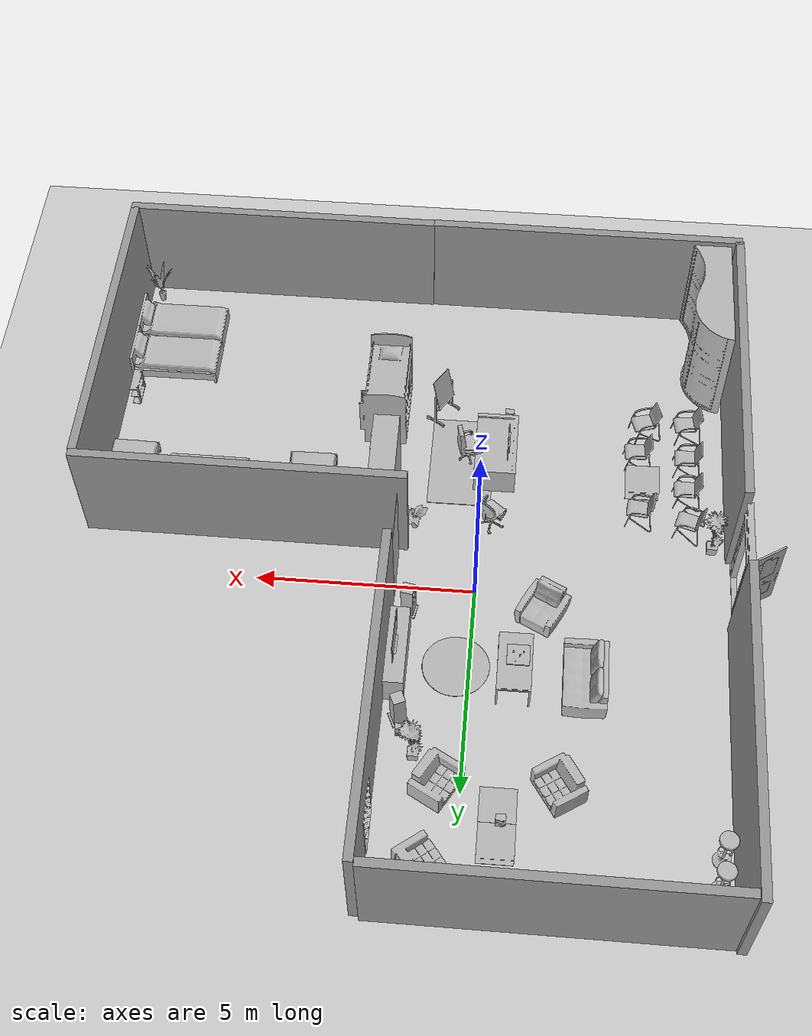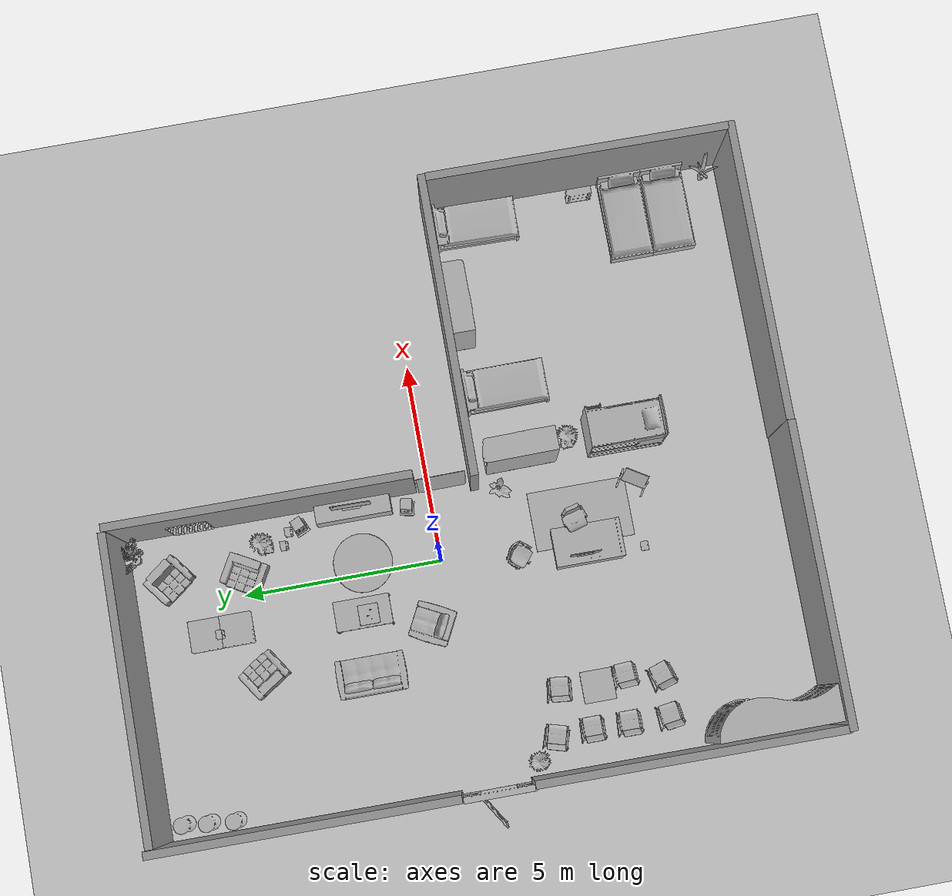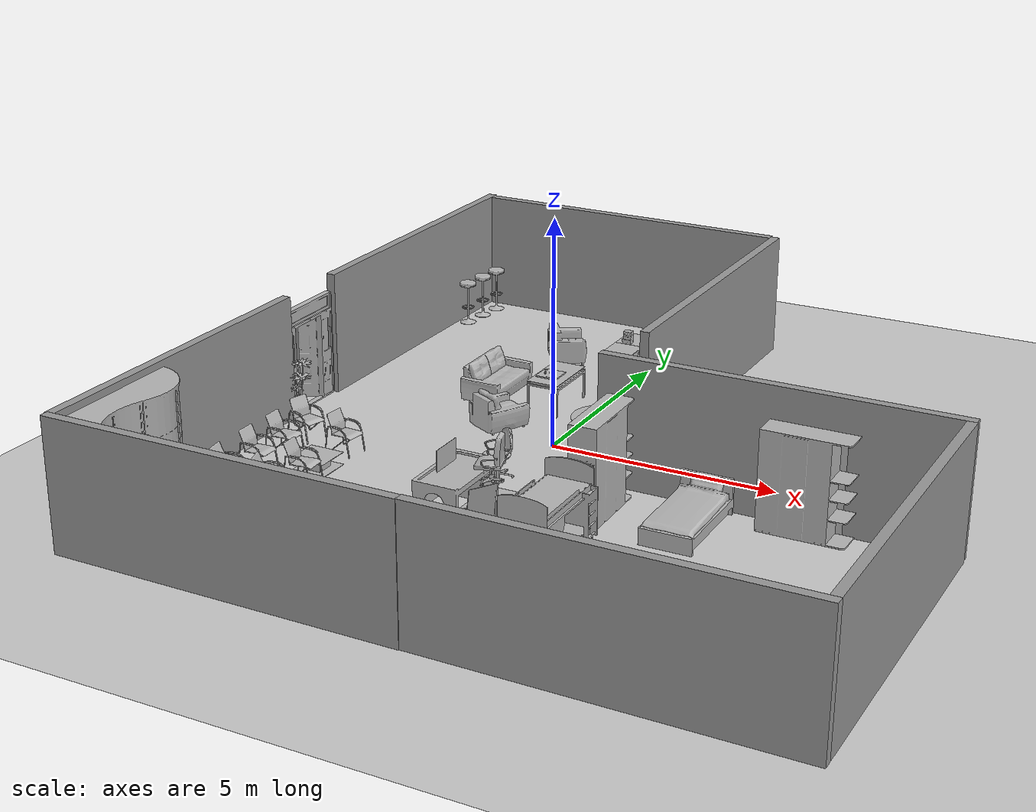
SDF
<sdf version="1.6">
 <world name="default">
  <light name="sun" type="directional">
   <pose>0 0 10 0 -0 0</pose>
   <diffuse>0.8 0.8 0.8 1</diffuse>
   <specular>0.2 0.2 0.2 1</specular>
   <attenuation>
    <range>1000</range>
    <constant>0.9</constant>
    <linear>0.01</linear>
    <quadratic>0.001</quadratic>
   </attenuation>
   <direction>-0.5 0.1 -0.9</direction>
  </light>
  <model name="ground_plane">
   <static>1</static>
   <link name="link">
    <collision name="collision">
     <geometry><plane><normal>0 0 1</normal><size>100 100</size></plane></geometry>
     <surface><friction><ode><mu>100</mu><mu2>50</mu2></ode></friction></surface>
    </collision>
    <visual name="visual">
     <cast_shadows>0</cast_shadows>
     <geometry><plane><normal>0 0 1</normal><size>100 100</size></plane></geometry>
     <material>
      <script><uri>file://media/materials/scripts/gazebo.material</uri><name>Gazebo/Grey</name></script>
     </material>
    </visual>
   </link>
  </model>
  <gravity>0 0 -9.8</gravity>
  <magnetic_field>6e-06 2.3e-05 -4.2e-05</magnetic_field>
  <atmosphere type="adiabatic"/>
  <physics name="default_physics" default="0" type="ode">
   <max_step_size>0.001</max_step_size>
   <real_time_factor>1</real_time_factor>
   <real_time_update_rate>1000</real_time_update_rate>
  </physics>
  <scene><ambient>0.4 0.4 0.4 1</ambient><background>0.7 0.7 0.7 1</background><shadows>1</shadows></scene>
  <audio><device>default</device></audio>
  <spherical_coordinates>
   <surface_model>EARTH_WGS84</surface_model>
   <latitude_deg>0</latitude_deg>
   <longitude_deg>0</longitude_deg>
   <elevation>0</elevation>
   <heading_deg>0</heading_deg>
  </spherical_coordinates>
  <model name="757">
   <pose>-5.86976 -0.409148 0 0 -0 0</pose>
   <static>1</static>
   <link name="link">
    <collision name="collision"><geometry><box><size>0.900001 1.76 2</size></box></geometry></collision>
    <visual name="visual"><geometry><mesh><uri>model://757/757.dae</uri></mesh></geometry></visual>
   </link>
  </model>
  <model name="grey_wall">
   <static>1</static>
   <link name="link">
    <pose>0 0 1.4 0 -0 0</pose>
    <collision name="collision"><geometry><box><size>7.5 0.2 2.8</size></box></geometry></collision>
    <visual name="visual">
     <cast_shadows>0</cast_shadows>
     <geometry><box><size>7.5 0.2 2.8</size></box></geometry>
     <material>
      <script>
       <uri>model://grey_wall/materials/scripts</uri>
       <uri>model://grey_wall/materials/textures</uri>
       <name>vrc/grey_wall</name>
      </script>
     </material>
    </visual>
   </link>
   <pose>-5.7899 4.23593 0 0 -0 1.56637</pose>
  </model>
  <model name="grey_wall_clone">
   <static>1</static>
   <link name="link">
    <pose>0 0 1.4 0 -0 0</pose>
    <collision name="collision"><geometry><box><size>7.5 0.2 2.8</size></box></geometry></collision>
    <visual name="visual">
     <cast_shadows>0</cast_shadows>
     <geometry><box><size>7.5 0.2 2.8</size></box></geometry>
     <material>
      <script>
       <uri>model://grey_wall/materials/scripts</uri>
       <uri>model://grey_wall/materials/textures</uri>
       <name>vrc/grey_wall</name>
      </script>
     </material>
    </visual>
   </link>
   <pose>-5.80636 -4.9969 0 0 -0 1.56637</pose>
  </model>
  <model name="grey_wall_clone_0">
   <static>1</static>
   <link name="link">
    <pose>0 0 1.4 0 -0 0</pose>
    <collision name="collision"><geometry><box><size>7.5 0.2 2.8</size></box></geometry></collision>
    <visual name="visual">
     <cast_shadows>0</cast_shadows>
     <geometry><box><size>7.5 0.2 2.8</size></box></geometry>
     <material>
      <script>
       <uri>model://grey_wall/materials/scripts</uri>
       <uri>model://grey_wall/materials/textures</uri>
       <name>vrc/grey_wall</name>
      </script>
     </material>
    </visual>
   </link>
   <pose>-1.91059 7.80441 0 0 0 -0.004197</pose>
  </model>
  <model name="grey_wall_clone_0_clone">
   <static>1</static>
   <link name="link">
    <pose>0 0 1.4 0 -0 0</pose>
    <collision name="collision"><geometry><box><size>7.5 0.2 2.8</size></box></geometry></collision>
    <visual name="visual">
     <cast_shadows>0</cast_shadows>
     <geometry><box><size>7.5 0.2 2.8</size></box></geometry>
     <material>
      <script>
       <uri>model://grey_wall/materials/scripts</uri>
       <uri>model://grey_wall/materials/textures</uri>
       <name>vrc/grey_wall</name>
      </script>
     </material>
    </visual>
   </link>
   <pose>-2.14051 -8.7976 0 0 0 -0.004197</pose>
  </model>
  <model name="grey_wall_clone_0_clone_0">
   <static>1</static>
   <link name="link">
    <pose>0 0 1.4 0 -0 0</pose>
    <collision name="collision"><geometry><box><size>7.5 0.2 2.8</size></box></geometry></collision>
    <visual name="visual">
     <cast_shadows>0</cast_shadows>
     <geometry><box><size>7.5 0.2 2.8</size></box></geometry>
     <material>
      <script>
       <uri>model://grey_wall/materials/scripts</uri>
       <uri>model://grey_wall/materials/textures</uri>
       <name>vrc/grey_wall</name>
      </script>
     </material>
    </visual>
   </link>
   <pose>5.34814 -8.81278 0 0 0 -0.004197</pose>
  </model>
  <model name="grey_wall_clone_clone">
   <static>1</static>
   <link name="link">
    <pose>0 0 1.4 0 -0 0</pose>
    <collision name="collision"><geometry><box><size>7.5 0.2 2.8</size></box></geometry></collision>
    <visual name="visual">
     <cast_shadows>0</cast_shadows>
     <geometry><box><size>7.5 0.2 2.8</size></box></geometry>
     <material>
      <script>
       <uri>model://grey_wall/materials/scripts</uri>
       <uri>model://grey_wall/materials/textures</uri>
       <name>vrc/grey_wall</name>
      </script>
     </material>
    </visual>
   </link>
   <pose>9.01416 -5.01534 0 0 -0 1.56637</pose>
  </model>
  <model name="grey_wall_clone_clone_0">
   <static>1</static>
   <link name="link">
    <pose>0 0 1.4 0 -0 0</pose>
    <collision name="collision"><geometry><box><size>7.5 0.2 2.8</size></box></geometry></collision>
    <visual name="visual">
     <cast_shadows>0</cast_shadows>
     <geometry><box><size>7.5 0.2 2.8</size></box></geometry>
     <material>
      <script>
       <uri>model://grey_wall/materials/scripts</uri>
       <uri>model://grey_wall/materials/textures</uri>
       <name>vrc/grey_wall</name>
      </script>
     </material>
    </visual>
   </link>
   <pose>1.93076 4.05414 0 0 -0 1.56637</pose>
  </model>
  <model name="grey_wall_clone_0_clone_1">
   <static>1</static>
   <link name="link">
    <pose>0 0 1.4 0 -0 0</pose>
    <collision name="collision"><geometry><box><size>7.5 0.2 2.8</size></box></geometry></collision>
    <visual name="visual">
     <cast_shadows>0</cast_shadows>
     <geometry><box><size>7.5 0.2 2.8</size></box></geometry>
     <material>
      <script>
       <uri>model://grey_wall/materials/scripts</uri>
       <uri>model://grey_wall/materials/textures</uri>
       <name>vrc/grey_wall</name>
      </script>
     </material>
    </visual>
   </link>
   <pose>5.3619 -1.15542 0 0 0 -0.004197</pose>
  </model>
  <model name="nist_maze_wall_240">
   <static>1</static>
   <link name="nist__maze_wall_240_link">
    <collision name="collision">
     <geometry>
      <mesh><uri>model://nist_maze_wall_240/meshes/nist_maze_wall_240.dae</uri><scale>1 1 1</scale></mesh>
     </geometry>
    </collision>
    <visual name="visual">
     <geometry>
      <mesh><uri>model://nist_maze_wall_240/meshes/nist_maze_wall_240.dae</uri><scale>1 1 1</scale></mesh>
     </geometry>
    </visual>
   </link>
   <pose>1.21521 -0.352435 0 0 0 -1.55928</pose>
  </model>
  <model name="169">
   <pose>0.664136 6.73721 0 0 0 -2.4856</pose>
   <static>1</static>
   <link name="link">
    <collision name="collision"><geometry><box><size>0.831232 1.00323 2</size></box></geometry></collision>
    <visual name="visual"><geometry><mesh><uri>model://169/169.dae</uri></mesh></geometry></visual>
   </link>
  </model>
  <model name="169_clone">
   <pose>0.494702 4.8891 0 0 -0 2.6281</pose>
   <static>1</static>
   <link name="link">
    <collision name="collision"><geometry><box><size>0.831232 1.00323 2</size></box></geometry></collision>
    <visual name="visual"><geometry><mesh><uri>model://169/169.dae</uri></mesh></geometry></visual>
   </link>
  </model>
  <model name="169_0">
   <pose>-2.03253 4.80608 0 0 -0 0.580463</pose>
   <static>1</static>
   <link name="link">
    <collision name="collision"><geometry><box><size>0.831232 1.00323 2</size></box></geometry></collision>
    <visual name="visual"><geometry><mesh><uri>model://169/169.dae</uri></mesh></geometry></visual>
   </link>
  </model>
  <model name="620">
   <pose>1.34565 7.51353 0 0 -0 0</pose>
   <static>1</static>
   <link name="link">
    <collision name="collision"><geometry><box><size>0.999657 0.770188 2</size></box></geometry></collision>
    <visual name="visual"><geometry><mesh><uri>model://620/620.dae</uri></mesh></geometry></visual>
   </link>
  </model>
  <model name="623">
   <pose>1.10176 4.26085 0 0 -0 0</pose>
   <static>1</static>
   <link name="link">
    <collision name="collision"><geometry><box><size>0.529798 0.561408 2</size></box></geometry></collision>
    <visual name="visual"><geometry><mesh><uri>model://623/623.dae</uri></mesh></geometry></visual>
   </link>
  </model>
  <model name="542">
   <pose>-0.802709 6.10654 0 0 -0 0</pose>
   <static>1</static>
   <link name="link">
    <collision name="collision"><geometry><box><size>0.79 0.79 2</size></box></geometry></collision>
    <visual name="visual"><geometry><mesh><uri>model://542/542.dae</uri></mesh></geometry></visual>
   </link>
  </model>
  <model name="542_clone">
   <pose>-0.799029 5.31725 0.004588 0 -0 0</pose>
   <static>1</static>
   <link name="link">
    <collision name="collision"><geometry><box><size>0.79 0.79 2</size></box></geometry></collision>
    <visual name="visual"><geometry><mesh><uri>model://542/542.dae</uri></mesh></geometry></visual>
   </link>
  </model>
  <model name="88">
   <pose>-5.3014 7.29005 0 0 -0 0</pose>
   <static>1</static>
   <link name="link">
    <collision name="collision"><geometry><box><size>0.40365 0.40365 2</size></box></geometry></collision>
    <visual name="visual"><geometry><mesh><uri>model://88/88.dae</uri></mesh></geometry></visual>
   </link>
  </model>
  <model name="88_0">
   <pose>-5.36677 6.68899 0 0 -0 0</pose>
   <static>1</static>
   <link name="link">
    <collision name="collision"><geometry><box><size>0.40365 0.40365 2</size></box></geometry></collision>
    <visual name="visual"><geometry><mesh><uri>model://88/88.dae</uri></mesh></geometry></visual>
   </link>
  </model>
  <model name="88_1">
   <pose>-5.42957 6.04141 0 0 -0 0</pose>
   <static>1</static>
   <link name="link">
    <collision name="collision"><geometry><box><size>0.40365 0.40365 2</size></box></geometry></collision>
    <visual name="visual"><geometry><mesh><uri>model://88/88.dae</uri></mesh></geometry></visual>
   </link>
  </model>
  <model name="319">
   <pose>-0.875637 5.70452 0.329809 0 -0 0</pose>
   <static>1</static>
   <link name="link">
    <collision name="collision"><geometry><box><size>0.22 0.19 2</size></box></geometry></collision>
    <visual name="visual"><geometry><mesh><uri>model://319/319.dae</uri></mesh></geometry></visual>
   </link>
  </model>
  <model name="42">
   <pose>6.13328 -1.52638 0 0 0 -1.57293</pose>
   <static>1</static>
   <link name="link">
    <collision name="collision"><geometry><box><size>0.610353 1.8 2</size></box></geometry></collision>
    <visual name="visual"><geometry><mesh><uri>model://42/42.dae</uri></mesh></geometry></visual>
   </link>
  </model>
  <model name="78">
   <pose>8.37288 -2.3857 0 0 0 -1.58815</pose>
   <static>1</static>
   <link name="link">
    <collision name="collision"><geometry><box><size>2.09 1.1 2</size></box></geometry></collision>
    <visual name="visual"><geometry><mesh><uri>model://78/78.dae</uri></mesh></geometry></visual>
   </link>
  </model>
  <model name="78_clone">
   <pose>4.06048 -2.364 0 0 0 -1.56564</pose>
   <static>1</static>
   <link name="link">
    <collision name="collision"><geometry><box><size>2.09 1.1 2</size></box></geometry></collision>
    <visual name="visual"><geometry><mesh><uri>model://78/78.dae</uri></mesh></geometry></visual>
   </link>
  </model>
  <model name="42_clone">
   <pose>2.26087 -2.40007 0 0 -0 0.012161</pose>
   <static>1</static>
   <link name="link">
    <collision name="collision"><geometry><box><size>0.610353 1.8 2</size></box></geometry></collision>
    <visual name="visual"><geometry><mesh><uri>model://42/42.dae</uri></mesh></geometry></visual>
   </link>
  </model>
  <model name="773">
   <pose>-5.17983 -7.1612 -0 0 -0 0</pose>
   <static>1</static>
   <link name="link">
    <collision name="collision"><geometry><box><size>0.9 2.99973 2</size></box></geometry></collision>
    <visual name="visual"><geometry><mesh><uri>model://773/773.dae</uri></mesh></geometry></visual>
   </link>
  </model>
  <model name="623_0">
   <pose>2.40283 -3.60907 0 0 -0 0</pose>
   <static>1</static>
   <link name="link">
    <collision name="collision"><geometry><box><size>0.529798 0.561408 2</size></box></geometry></collision>
    <visual name="visual"><geometry><mesh><uri>model://623/623.dae</uri></mesh></geometry></visual>
   </link>
  </model>
  <model name="78_0">
   <pose>7.83848 -6.18789 0 0 0 -3.13996</pose>
   <static>1</static>
   <link name="link">
    <collision name="collision"><geometry><box><size>2.09 1.1 2</size></box></geometry></collision>
    <visual name="visual"><geometry><mesh><uri>model://78/78.dae</uri></mesh></geometry></visual>
   </link>
  </model>
  <model name="78_0_clone">
   <pose>7.84424 -7.27052 0 0 0 -3.13996</pose>
   <static>1</static>
   <link name="link">
    <collision name="collision"><geometry><box><size>2.09 1.1 2</size></box></geometry></collision>
    <visual name="visual"><geometry><mesh><uri>model://78/78.dae</uri></mesh></geometry></visual>
   </link>
  </model>
  <model name="237">
   <pose>8.5982 -8.3315 0 0 -0 0</pose>
   <static>1</static>
   <link name="link">
    <collision name="collision"><geometry><box><size>0.839248 0.825384 2</size></box></geometry></collision>
    <visual name="visual"><geometry><mesh><uri>model://237/237.dae</uri></mesh></geometry></visual>
   </link>
  </model>
  <model name="456">
   <pose>8.64357 -5.11187 0 0 -0 0</pose>
   <static>1</static>
   <link name="link">
    <collision name="collision"><geometry><box><size>0.2 0.63 2</size></box></geometry></collision>
    <visual name="visual"><geometry><mesh><uri>model://456/456.dae</uri></mesh></geometry></visual>
   </link>
  </model>
  <model name="506">
   <pose>-0.984155 2.12658 0 0 -0 0</pose>
   <static>1</static>
   <link name="link">
    <collision name="collision"><geometry><box><size>0.75 1.40043 2</size></box></geometry></collision>
    <visual name="visual"><geometry><mesh><uri>model://506/506.dae</uri></mesh></geometry></visual>
   </link>
  </model>
  <model name="s__1647">
   <pose>0.298003 1.94991 0 0 -0 0</pose>
   <static>1</static>
   <link name="link">
    <collision name="collision"><geometry><box><size>1.5 1.5 0</size></box></geometry></collision>
    <visual name="visual"><geometry><mesh><uri>model://s__1647/s__1647.dae</uri></mesh></geometry></visual>
   </link>
  </model>
  <model name="s__644">
   <pose>-2.52477 2.18971 0 0 -0 0</pose>
   <static>1</static>
   <link name="link">
    <collision name="collision"><geometry><box><size>0.96 1.74 2</size></box></geometry></collision>
    <visual name="visual"><geometry><mesh><uri>model://s__644/s__644.dae</uri></mesh></geometry></visual>
   </link>
  </model>
  <model name="s__645">
   <pose>-1.54022 0.487903 0 0 -0 1.09611</pose>
   <static>1</static>
   <link name="link">
    <collision name="collision"><geometry><box><size>1 0.95 2</size></box></geometry></collision>
    <visual name="visual"><geometry><mesh><uri>model://s__645/s__645.dae</uri></mesh></geometry></visual>
   </link>
  </model>
  <model name="s__563">
   <pose>1.61229 1.94117 0 0 -0 0</pose>
   <static>1</static>
   <link name="link">
    <collision name="collision"><geometry><box><size>0.48 1.90001 2</size></box></geometry></collision>
    <visual name="visual"><geometry><mesh><uri>model://s__563/s__563.dae</uri></mesh></geometry></visual>
   </link>
  </model>
  <model name="112">
   <pose>1.63569 1.96309 0.804337 0 -0 3.12503</pose>
   <static>1</static>
   <link name="link">
    <collision name="collision"><geometry><box><size>0.099688 0.99 2</size></box></geometry></collision>
    <visual name="visual"><geometry><mesh><uri>model://112/112.dae</uri></mesh></geometry></visual>
   </link>
  </model>
  <model name="319_0">
   <pose>1.37754 3.6489 0 0 -0 0</pose>
   <static>1</static>
   <link name="link">
    <collision name="collision"><geometry><box><size>0.22 0.19 2</size></box></geometry></collision>
    <visual name="visual"><geometry><mesh><uri>model://319/319.dae</uri></mesh></geometry></visual>
   </link>
  </model>
  <model name="319_1">
   <pose>1.05666 3.81317 0 0 -0 0</pose>
   <static>1</static>
   <link name="link">
    <collision name="collision"><geometry><box><size>0.22 0.19 2</size></box></geometry></collision>
    <visual name="visual"><geometry><mesh><uri>model://319/319.dae</uri></mesh></geometry></visual>
   </link>
  </model>
  <model name="430">
   <pose>-0.2654 -3.65525 0.074718 0 -0 0</pose>
   <static>1</static>
   <link name="link">
    <collision name="collision"><geometry><box><size>0.970014 1.72969 2</size></box></geometry></collision>
    <visual name="visual"><geometry><mesh><uri>model://430/430.dae</uri></mesh></geometry></visual>
   </link>
  </model>
  <model name="518">
   <pose>1.08719 -5.08937 0 0 -0 2.58962</pose>
   <static>1</static>
   <link name="link">
    <collision name="collision"><geometry><box><size>0.5 0.7 2</size></box></geometry></collision>
    <visual name="visual"><geometry><mesh><uri>model://518/518.dae</uri></mesh></geometry></visual>
   </link>
  </model>
  <model name="425">
   <pose>-3.81917 -4.88201 0 0 -0 0.302775</pose>
   <static>1</static>
   <link name="link">
    <collision name="collision"><geometry><box><size>0.632125 0.610274 2</size></box></geometry></collision>
    <visual name="visual"><geometry><mesh><uri>model://425/425.dae</uri></mesh></geometry></visual>
   </link>
  </model>
  <model name="106">
   <pose>0.344415 -3.41584 0.598614 0 -0 0.263311</pose>
   <static>1</static>
   <link name="link">
    <collision name="collision"><geometry><box><size>0.550393 0.596196 2</size></box></geometry></collision>
    <visual name="visual"><geometry><mesh><uri>model://106/106.dae</uri></mesh></geometry></visual>
   </link>
  </model>
  <model name="111">
   <pose>-0.560447 -3.54048 0.826842 0 -0 0</pose>
   <static>1</static>
   <link name="link">
    <collision name="collision"><geometry><box><size>0.047027 0.76016 2</size></box></geometry></collision>
    <visual name="visual"><geometry><mesh><uri>model://111/111.dae</uri></mesh></geometry></visual>
   </link>
  </model>
  <model name="747">
   <pose>1.84118 5.98193 0 0 -0 0</pose>
   <static>1</static>
   <link name="link">
    <collision name="collision"><geometry><box><size>0.05 1 2</size></box></geometry></collision>
    <visual name="visual"><geometry><mesh><uri>model://747/747.dae</uri></mesh></geometry></visual>
   </link>
  </model>
  <model name="278">
   <pose>1.4588 0.611257 0 0 -0 2.94747</pose>
   <static>1</static>
   <link name="link">
    <collision name="collision"><geometry><box><size>0.366852 0.366852 2</size></box></geometry></collision>
    <visual name="visual"><geometry><mesh><uri>model://278/278.dae</uri></mesh></geometry></visual>
   </link>
  </model>
  <model name="278_clone">
   <pose>1.44851 3.34088 0 0 -0 -2.71995</pose>
   <static>1</static>
   <link name="link">
    <collision name="collision"><geometry><box><size>0.366852 0.366852 2</size></box></geometry></collision>
    <visual name="visual"><geometry><mesh><uri>model://278/278.dae</uri></mesh></geometry></visual>
   </link>
  </model>
  <model name="425_clone">
   <pose>-4.8024 -2.95105 0 0 -0 0</pose>
   <static>1</static>
   <link name="link">
    <collision name="collision"><geometry><box><size>0.632125 0.610274 2</size></box></geometry></collision>
    <visual name="visual"><geometry><mesh><uri>model://425/425.dae</uri></mesh></geometry></visual>
   </link>
  </model>
  <model name="425_clone_0">
   <pose>-4.81932 -3.87166 0 0 -0 0</pose>
   <static>1</static>
   <link name="link">
    <collision name="collision"><geometry><box><size>0.632125 0.610274 2</size></box></geometry></collision>
    <visual name="visual"><geometry><mesh><uri>model://425/425.dae</uri></mesh></geometry></visual>
   </link>
  </model>
  <model name="425_clone_1">
   <pose>-4.82054 -4.8923 0 0 -0 0.148795</pose>
   <static>1</static>
   <link name="link">
    <collision name="collision"><geometry><box><size>0.632125 0.610274 2</size></box></geometry></collision>
    <visual name="visual"><geometry><mesh><uri>model://425/425.dae</uri></mesh></geometry></visual>
   </link>
  </model>
  <model name="425_clone_2">
   <pose>-4.84763 -2.03372 0 0 0 -0.282259</pose>
   <static>1</static>
   <link name="link">
    <collision name="collision"><geometry><box><size>0.632125 0.610274 2</size></box></geometry></collision>
    <visual name="visual"><geometry><mesh><uri>model://425/425.dae</uri></mesh></geometry></visual>
   </link>
  </model>
  <model name="425_clone_4">
   <pose>-3.64438 -3.9792 0 0 -0 0.064365</pose>
   <static>1</static>
   <link name="link">
    <collision name="collision"><geometry><box><size>0.632125 0.610274 2</size></box></geometry></collision>
    <visual name="visual"><geometry><mesh><uri>model://425/425.dae</uri></mesh></geometry></visual>
   </link>
  </model>
  <model name="130">
   <pose>1.51051 -1.72596 0 0 -0 0</pose>
   <static>1</static>
   <link name="link">
    <collision name="collision"><geometry><box><size>0.51716 0.566834 2</size></box></geometry></collision>
    <visual name="visual"><geometry><mesh><uri>model://130/130.dae</uri></mesh></geometry></visual>
   </link>
  </model>
  <model name="270">
   <pose>2.4925 -5.06569 0 0 -0 0</pose>
   <static>1</static>
   <link name="link">
    <collision name="collision"><geometry><box><size>1.10097 1.9 2</size></box></geometry></collision>
    <visual name="visual"><geometry><mesh><uri>model://270/270.dae</uri></mesh></geometry></visual>
   </link>
  </model>
  <model name="542_0">
   <pose>-3.76785 -3.28824 0 0 -0 0</pose>
   <static>1</static>
   <link name="link">
    <collision name="collision"><geometry><box><size>0.79 0.79 2</size></box></geometry></collision>
    <visual name="visual"><geometry><mesh><uri>model://542/542.dae</uri></mesh></geometry></visual>
   </link>
  </model>
  <model name="425_clone_clone">
   <pose>-3.70471 -2.31533 0 0 0 -0.103556</pose>
   <static>1</static>
   <link name="link">
    <collision name="collision"><geometry><box><size>0.632125 0.610274 2</size></box></geometry></collision>
    <visual name="visual"><geometry><mesh><uri>model://425/425.dae</uri></mesh></geometry></visual>
   </link>
  </model>
  <model name="340">
   <pose>-1.0501 1.98637 0.749715 0 -0 0</pose>
   <static>1</static>
   <link name="link">
    <collision name="collision"><geometry><box><size>0.5 0.5 2</size></box></geometry></collision>
    <visual name="visual"><geometry><mesh><uri>model://340/340.dae</uri></mesh></geometry></visual>
   </link>
  </model>
  <model name="319_2">
   <pose>-0.545631 -5.10262 0 0 -0 0</pose>
   <static>1</static>
   <link name="link">
    <collision name="collision"><geometry><box><size>0.22 0.19 2</size></box></geometry></collision>
    <visual name="visual"><geometry><mesh><uri>model://319/319.dae</uri></mesh></geometry></visual>
   </link>
  </model>
  <model name="238">
   <pose>0.540745 -3.66812 0 0 -0 0</pose>
   <static>1</static>
   <link name="link">
    <collision name="collision"><geometry><box><size>1.5 2.5 0</size></box></geometry></collision>
    <visual name="visual"><geometry><mesh><uri>model://238/238.dae</uri></mesh></geometry></visual>
   </link>
  </model>
  <model name="623_1">
   <pose>-5.31871 -1.49008 0 0 -0 0</pose>
   <static>1</static>
   <link name="link">
    <collision name="collision"><geometry><box><size>0.529798 0.561408 2</size></box></geometry></collision>
    <visual name="visual"><geometry><mesh><uri>model://623/623.dae</uri></mesh></geometry></visual>
   </link>
  </model>
  <model name="335">
   <pose>-0.268168 -1.95212 0 0 0 -2.25506</pose>
   <static>1</static>
   <link name="link">
    <collision name="collision"><geometry><box><size>0.599914 0.62 2</size></box></geometry></collision>
    <visual name="visual"><geometry><mesh><uri>model://335/335.dae</uri></mesh></geometry></visual>
   </link>
  </model>
 </world>
</sdf>
